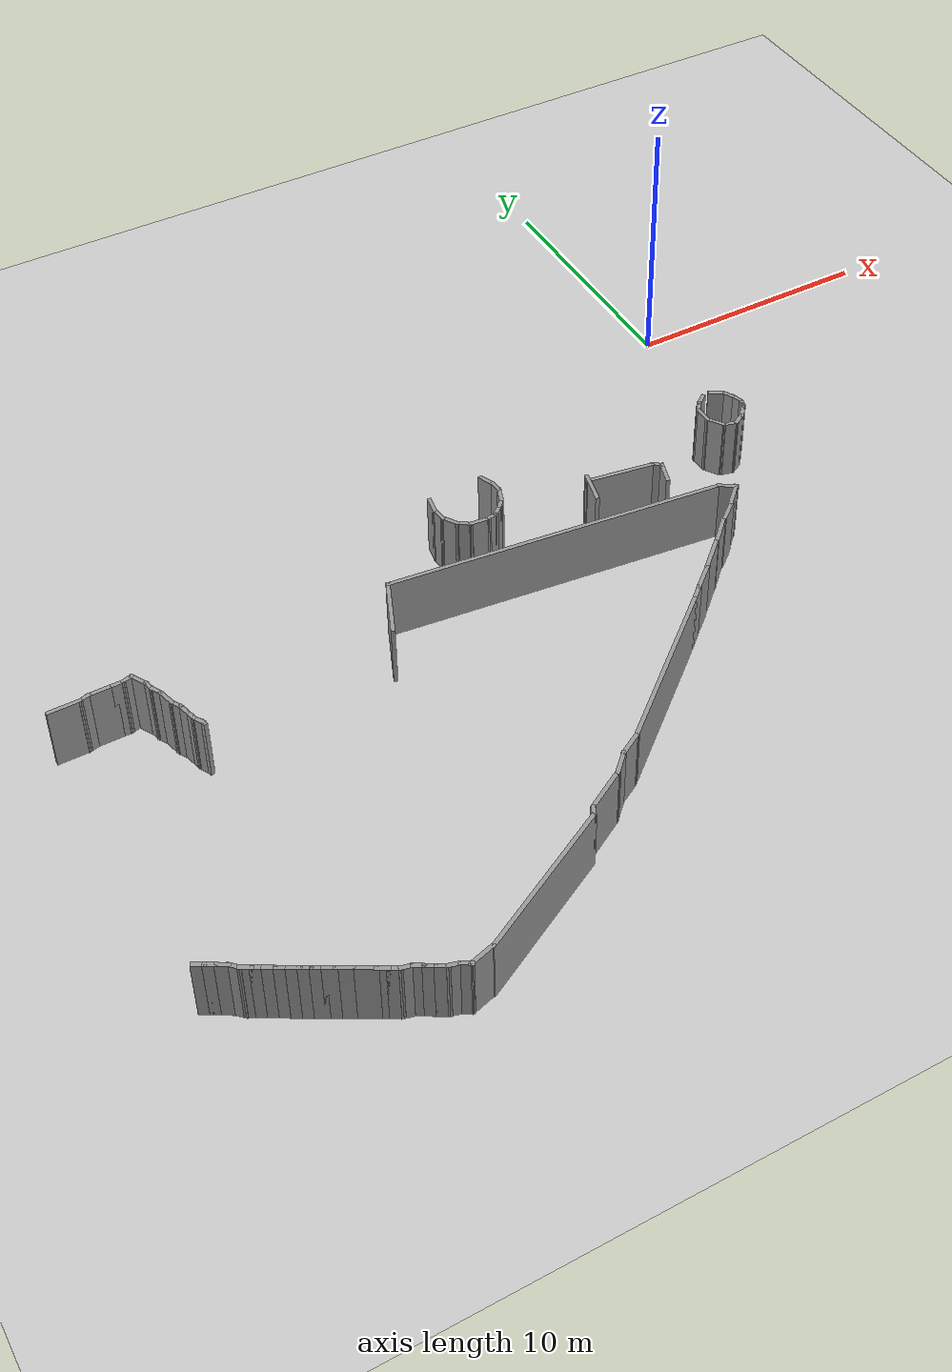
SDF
<sdf version="1.6">
 <world name="default">
  <model name="ground_plane">
   <static>1</static>
   <link name="link">
    <collision name="collision">
     <geometry><plane><normal>0 0 1</normal><size>100 100</size></plane></geometry>
     <surface><friction><ode><mu>100</mu><mu2>50</mu2></ode></friction></surface>
    </collision>
    <visual name="visual">
     <cast_shadows>0</cast_shadows>
     <geometry><plane><normal>0 0 1</normal><size>100 100</size></plane></geometry>
     <material>
      <script><uri>file://media/materials/scripts/gazebo.material</uri><name>Gazebo/Grey</name></script>
     </material>
    </visual>
   </link>
  </model>
  <model name="scene">
   <pose>1.8013 -1.70593 0 0 -0 0</pose>
   <link name="Wall_1000">
    <collision name="Wall_1000_Collision">
     <geometry><box><size>0.594006 0.15 2.5</size></box></geometry>
     <pose>0 0 1.25 0 -0 0</pose>
    </collision>
    <visual name="Wall_1000_Visual">
     <pose>0 0 1.25 0 -0 0</pose>
     <geometry><box><size>0.594006 0.15 2.5</size></box></geometry>
     <material>
      <script><uri>file://media/materials/scripts/gazebo.material</uri><name>Gazebo/Grey</name></script>
      <ambient>1 1 1 1</ambient>
     </material>
    </visual>
    <pose>-3.85892 -5.03542 0 0 -0 0.953422</pose>
   </link>
   <link name="Wall_1001">
    <collision name="Wall_1001_Collision">
     <geometry><box><size>0.604524 0.15 2.5</size></box></geometry>
     <pose>0 0 1.25 0 -0 0</pose>
    </collision>
    <visual name="Wall_1001_Visual">
     <pose>0 0 1.25 0 -0 0</pose>
     <geometry><box><size>0.604524 0.15 2.5</size></box></geometry>
     <material>
      <script><uri>file://media/materials/scripts/gazebo.material</uri><name>Gazebo/Grey</name></script>
      <ambient>1 1 1 1</ambient>
     </material>
    </visual>
    <pose>-3.54219 -4.71395 0 0 -0 0.666228</pose>
   </link>
   <link name="Wall_1003">
    <collision name="Wall_1003_Collision">
     <geometry><box><size>0.605711 0.15 2.5</size></box></geometry>
     <pose>0 0 1.25 0 -0 0</pose>
    </collision>
    <visual name="Wall_1003_Visual">
     <pose>0 0 1.25 0 -0 0</pose>
     <geometry><box><size>0.605711 0.15 2.5</size></box></geometry>
     <material>
      <script><uri>file://media/materials/scripts/gazebo.material</uri><name>Gazebo/Grey</name></script>
      <ambient>1 1 1 1</ambient>
     </material>
    </visual>
    <pose>-2.83167 -4.65707 0 0 0 -0.577103</pose>
   </link>
   <link name="Wall_1042">
    <collision name="Wall_1042_Collision">
     <geometry><box><size>0.686861 0.15 2.5</size></box></geometry>
     <pose>0 0 1.25 0 -0 0</pose>
    </collision>
    <visual name="Wall_1042_Visual">
     <pose>0 0 1.25 0 -0 0</pose>
     <geometry><box><size>0.686861 0.15 2.5</size></box></geometry>
     <material>
      <script><uri>file://media/materials/scripts/gazebo.material</uri><name>Gazebo/Grey</name></script>
      <ambient>1 1 1 1</ambient>
     </material>
    </visual>
    <pose>-12.8718 -4.70182 0 0 0 -1.16988</pose>
   </link>
   <link name="Wall_1043">
    <collision name="Wall_1043_Collision">
     <geometry><box><size>0.546988 0.15 2.5</size></box></geometry>
     <pose>0 0 1.25 0 -0 0</pose>
    </collision>
    <visual name="Wall_1043_Visual">
     <pose>0 0 1.25 0 -0 0</pose>
     <geometry><box><size>0.546988 0.15 2.5</size></box></geometry>
     <material>
      <script><uri>file://media/materials/scripts/gazebo.material</uri><name>Gazebo/Grey</name></script>
      <ambient>1 1 1 1</ambient>
     </material>
    </visual>
    <pose>-12.7444 -5.15565 0 0 0 -1.45643</pose>
   </link>
   <link name="Wall_1044">
    <collision name="Wall_1044_Collision">
     <geometry><box><size>0.701474 0.15 2.5</size></box></geometry>
     <pose>0 0 1.25 0 -0 0</pose>
    </collision>
    <visual name="Wall_1044_Visual">
     <pose>0 0 1.25 0 -0 0</pose>
     <geometry><box><size>0.701474 0.15 2.5</size></box></geometry>
     <material>
      <script><uri>file://media/materials/scripts/gazebo.material</uri><name>Gazebo/Grey</name></script>
      <ambient>1 1 1 1</ambient>
     </material>
    </visual>
    <pose>-12.8166 -5.60224 0 0 0 -1.92224</pose>
   </link>
   <link name="Wall_1045">
    <collision name="Wall_1045_Collision">
     <geometry><box><size>0.529759 0.15 2.5</size></box></geometry>
     <pose>0 0 1.25 0 -0 0</pose>
    </collision>
    <visual name="Wall_1045_Visual">
     <pose>0 0 1.25 0 -0 0</pose>
     <geometry><box><size>0.529759 0.15 2.5</size></box></geometry>
     <material>
      <script><uri>file://media/materials/scripts/gazebo.material</uri><name>Gazebo/Grey</name></script>
      <ambient>1 1 1 1</ambient>
     </material>
    </visual>
    <pose>-13.0236 -6.00702 0 0 0 -2.26529</pose>
   </link>
   <link name="Wall_1046">
    <collision name="Wall_1046_Collision">
     <geometry><box><size>0.59053 0.15 2.5</size></box></geometry>
     <pose>0 0 1.25 0 -0 0</pose>
    </collision>
    <visual name="Wall_1046_Visual">
     <pose>0 0 1.25 0 -0 0</pose>
     <geometry><box><size>0.59053 0.15 2.5</size></box></geometry>
     <material>
      <script><uri>file://media/materials/scripts/gazebo.material</uri><name>Gazebo/Grey</name></script>
      <ambient>1 1 1 1</ambient>
     </material>
    </visual>
    <pose>-13.3053 -6.29343 0 0 0 -2.44982</pose>
   </link>
   <link name="Wall_1047">
    <collision name="Wall_1047_Collision">
     <geometry><box><size>0.492926 0.15 2.5</size></box></geometry>
     <pose>0 0 1.25 0 -0 0</pose>
    </collision>
    <visual name="Wall_1047_Visual">
     <pose>0 0 1.25 0 -0 0</pose>
     <geometry><box><size>0.492926 0.15 2.5</size></box></geometry>
     <material>
      <script><uri>file://media/materials/scripts/gazebo.material</uri><name>Gazebo/Grey</name></script>
      <ambient>1 1 1 1</ambient>
     </material>
    </visual>
    <pose>-13.6421 -6.4814 0 0 0 -2.9183</pose>
   </link>
   <link name="Wall_1048">
    <collision name="Wall_1048_Collision">
     <geometry><box><size>0.833074 0.15 2.5</size></box></geometry>
     <pose>0 0 1.25 0 -0 0</pose>
    </collision>
    <visual name="Wall_1048_Visual">
     <pose>0 0 1.25 0 -0 0</pose>
     <geometry><box><size>0.833074 0.15 2.5</size></box></geometry>
     <material>
      <script><uri>file://media/materials/scripts/gazebo.material</uri><name>Gazebo/Grey</name></script>
      <ambient>1 1 1 1</ambient>
     </material>
    </visual>
    <pose>-14.1391 -6.48056 0 0 -0 3.02773</pose>
   </link>
   <link name="Wall_1049">
    <collision name="Wall_1049_Collision">
     <geometry><box><size>0.630579 0.15 2.5</size></box></geometry>
     <pose>0 0 1.25 0 -0 0</pose>
    </collision>
    <visual name="Wall_1049_Visual">
     <pose>0 0 1.25 0 -0 0</pose>
     <geometry><box><size>0.630579 0.15 2.5</size></box></geometry>
     <material>
      <script><uri>file://media/materials/scripts/gazebo.material</uri><name>Gazebo/Grey</name></script>
      <ambient>1 1 1 1</ambient>
     </material>
    </visual>
    <pose>-14.6775 -6.31666 0 0 -0 2.54708</pose>
   </link>
   <link name="Wall_1050">
    <collision name="Wall_1050_Collision">
     <geometry><box><size>0.728776 0.15 2.5</size></box></geometry>
     <pose>0 0 1.25 0 -0 0</pose>
    </collision>
    <visual name="Wall_1050_Visual">
     <pose>0 0 1.25 0 -0 0</pose>
     <geometry><box><size>0.728776 0.15 2.5</size></box></geometry>
     <material>
      <script><uri>file://media/materials/scripts/gazebo.material</uri><name>Gazebo/Grey</name></script>
      <ambient>1 1 1 1</ambient>
     </material>
    </visual>
    <pose>-15.0388 -5.93293 0 0 -0 2.1658</pose>
   </link>
   <link name="Wall_1051">
    <collision name="Wall_1051_Collision">
     <geometry><box><size>0.665895 0.15 2.5</size></box></geometry>
     <pose>0 0 1.25 0 -0 0</pose>
    </collision>
    <visual name="Wall_1051_Visual">
     <pose>0 0 1.25 0 -0 0</pose>
     <geometry><box><size>0.665895 0.15 2.5</size></box></geometry>
     <material>
      <script><uri>file://media/materials/scripts/gazebo.material</uri><name>Gazebo/Grey</name></script>
      <ambient>1 1 1 1</ambient>
     </material>
    </visual>
    <pose>-15.2373 -5.43672 0 0 -0 1.67477</pose>
   </link>
   <link name="Wall_1052">
    <collision name="Wall_1052_Collision">
     <geometry><box><size>0.73529 0.15 2.5</size></box></geometry>
     <pose>0 0 1.25 0 -0 0</pose>
    </collision>
    <visual name="Wall_1052_Visual">
     <pose>0 0 1.25 0 -0 0</pose>
     <geometry><box><size>0.73529 0.15 2.5</size></box></geometry>
     <material>
      <script><uri>file://media/materials/scripts/gazebo.material</uri><name>Gazebo/Grey</name></script>
      <ambient>1 1 1 1</ambient>
     </material>
    </visual>
    <pose>-15.2232 -4.89188 0 0 -0 1.39796</pose>
   </link>
   <link name="Wall_166">
    <collision name="Wall_166_Collision">
     <geometry><box><size>1.25 0.15 2.5</size></box></geometry>
     <pose>0 0 1.25 0 -0 0</pose>
    </collision>
    <visual name="Wall_166_Visual">
     <pose>0 0 1.25 0 -0 0</pose>
     <geometry><box><size>1.25 0.15 2.5</size></box></geometry>
     <material>
      <script><uri>file://media/materials/scripts/gazebo.material</uri><name>Gazebo/Grey</name></script>
      <ambient>1 1 1 1</ambient>
     </material>
    </visual>
    <pose>-30.2299 -7.53794 0 0 -0 0</pose>
   </link>
   <link name="Wall_167">
    <collision name="Wall_167_Collision">
     <geometry><box><size>0.5 0.15 2.5</size></box></geometry>
     <pose>0 0 1.25 0 -0 0</pose>
    </collision>
    <visual name="Wall_167_Visual">
     <pose>0 0 1.25 0 -0 0</pose>
     <geometry><box><size>0.5 0.15 2.5</size></box></geometry>
     <material>
      <script><uri>file://media/materials/scripts/gazebo.material</uri><name>Gazebo/Grey</name></script>
      <ambient>1 1 1 1</ambient>
     </material>
    </visual>
    <pose>-29.5109 -7.49265 0 0 -0 0.261799</pose>
   </link>
   <link name="Wall_168">
    <collision name="Wall_168_Collision">
     <geometry><box><size>1 0.15 2.5</size></box></geometry>
     <pose>0 0 1.25 0 -0 0</pose>
    </collision>
    <visual name="Wall_168_Visual">
     <pose>0 0 1.25 0 -0 0</pose>
     <geometry><box><size>1 0.15 2.5</size></box></geometry>
     <material>
      <script><uri>file://media/materials/scripts/gazebo.material</uri><name>Gazebo/Grey</name></script>
      <ambient>1 1 1 1</ambient>
     </material>
    </visual>
    <pose>-28.9169 -7.44735 0 0 -0 0</pose>
   </link>
   <link name="Wall_169">
    <collision name="Wall_169_Collision">
     <geometry><box><size>0.5 0.15 2.5</size></box></geometry>
     <pose>0 0 1.25 0 -0 0</pose>
    </collision>
    <visual name="Wall_169_Visual">
     <pose>0 0 1.25 0 -0 0</pose>
     <geometry><box><size>0.5 0.15 2.5</size></box></geometry>
     <material>
      <script><uri>file://media/materials/scripts/gazebo.material</uri><name>Gazebo/Grey</name></script>
      <ambient>1 1 1 1</ambient>
     </material>
    </visual>
    <pose>-28.3169 -7.44735 0 0 -0 0</pose>
   </link>
   <link name="Wall_170">
    <collision name="Wall_170_Collision">
     <geometry><box><size>0.5 0.15 2.5</size></box></geometry>
     <pose>0 0 1.25 0 -0 0</pose>
    </collision>
    <visual name="Wall_170_Visual">
     <pose>0 0 1.25 0 -0 0</pose>
     <geometry><box><size>0.5 0.15 2.5</size></box></geometry>
     <material>
      <script><uri>file://media/materials/scripts/gazebo.material</uri><name>Gazebo/Grey</name></script>
      <ambient>1 1 1 1</ambient>
     </material>
    </visual>
    <pose>-27.9728 -7.40206 0 0 -0 0.261799</pose>
   </link>
   <link name="Wall_171">
    <collision name="Wall_171_Collision">
     <geometry><box><size>0.75 0.15 2.5</size></box></geometry>
     <pose>0 0 1.25 0 -0 0</pose>
    </collision>
    <visual name="Wall_171_Visual">
     <pose>0 0 1.25 0 -0 0</pose>
     <geometry><box><size>0.75 0.15 2.5</size></box></geometry>
     <material>
      <script><uri>file://media/materials/scripts/gazebo.material</uri><name>Gazebo/Grey</name></script>
      <ambient>1 1 1 1</ambient>
     </material>
    </visual>
    <pose>-27.6538 -7.61657 0 0 0 -1.0472</pose>
   </link>
   <link name="Wall_172">
    <collision name="Wall_172_Collision">
     <geometry><box><size>0.5 0.15 2.5</size></box></geometry>
     <pose>0 0 1.25 0 -0 0</pose>
    </collision>
    <visual name="Wall_172_Visual">
     <pose>0 0 1.25 0 -0 0</pose>
     <geometry><box><size>0.5 0.15 2.5</size></box></geometry>
     <material>
      <script><uri>file://media/materials/scripts/gazebo.material</uri><name>Gazebo/Grey</name></script>
      <ambient>1 1 1 1</ambient>
     </material>
    </visual>
    <pose>-27.4585 -8.04542 0 0 0 -1.309</pose>
   </link>
   <link name="Wall_173">
    <collision name="Wall_173_Collision">
     <geometry><box><size>0.5 0.15 2.5</size></box></geometry>
     <pose>0 0 1.25 0 -0 0</pose>
    </collision>
    <visual name="Wall_173_Visual">
     <pose>0 0 1.25 0 -0 0</pose>
     <geometry><box><size>0.5 0.15 2.5</size></box></geometry>
     <material>
      <script><uri>file://media/materials/scripts/gazebo.material</uri><name>Gazebo/Grey</name></script>
      <ambient>1 1 1 1</ambient>
     </material>
    </visual>
    <pose>-27.3257 -8.36601 0 0 0 -1.0472</pose>
   </link>
   <link name="Wall_174">
    <collision name="Wall_174_Collision">
     <geometry><box><size>0.75 0.15 2.5</size></box></geometry>
     <pose>0 0 1.25 0 -0 0</pose>
    </collision>
    <visual name="Wall_174_Visual">
     <pose>0 0 1.25 0 -0 0</pose>
     <geometry><box><size>0.75 0.15 2.5</size></box></geometry>
     <material>
      <script><uri>file://media/materials/scripts/gazebo.material</uri><name>Gazebo/Grey</name></script>
      <ambient>1 1 1 1</ambient>
     </material>
    </visual>
    <pose>-27.1606 -8.80734 0 0 0 -1.309</pose>
   </link>
   <link name="Wall_176">
    <collision name="Wall_176_Collision">
     <geometry><box><size>0.5 0.15 2.5</size></box></geometry>
     <pose>0 0 1.25 0 -0 0</pose>
    </collision>
    <visual name="Wall_176_Visual">
     <pose>0 0 1.25 0 -0 0</pose>
     <geometry><box><size>0.5 0.15 2.5</size></box></geometry>
     <material>
      <script><uri>file://media/materials/scripts/gazebo.material</uri><name>Gazebo/Grey</name></script>
      <ambient>1 1 1 1</ambient>
     </material>
    </visual>
    <pose>-26.9954 -9.24867 0 0 0 -1.0472</pose>
   </link>
   <link name="Wall_177">
    <collision name="Wall_177_Collision">
     <geometry><box><size>0.5 0.15 2.5</size></box></geometry>
     <pose>0 0 1.25 0 -0 0</pose>
    </collision>
    <visual name="Wall_177_Visual">
     <pose>0 0 1.25 0 -0 0</pose>
     <geometry><box><size>0.5 0.15 2.5</size></box></geometry>
     <material>
      <script><uri>file://media/materials/scripts/gazebo.material</uri><name>Gazebo/Grey</name></script>
      <ambient>1 1 1 1</ambient>
     </material>
    </visual>
    <pose>-26.8626 -9.56926 0 0 0 -1.309</pose>
   </link>
   <link name="Wall_178">
    <collision name="Wall_178_Collision">
     <geometry><box><size>0.5 0.15 2.5</size></box></geometry>
     <pose>0 0 1.25 0 -0 0</pose>
    </collision>
    <visual name="Wall_178_Visual">
     <pose>0 0 1.25 0 -0 0</pose>
     <geometry><box><size>0.5 0.15 2.5</size></box></geometry>
     <material>
      <script><uri>file://media/materials/scripts/gazebo.material</uri><name>Gazebo/Grey</name></script>
      <ambient>1 1 1 1</ambient>
     </material>
    </visual>
    <pose>-26.772 -9.90734 0 0 0 -1.309</pose>
   </link>
   <link name="Wall_179">
    <collision name="Wall_179_Collision">
     <geometry><box><size>0.5 0.15 2.5</size></box></geometry>
     <pose>0 0 1.25 0 -0 0</pose>
    </collision>
    <visual name="Wall_179_Visual">
     <pose>0 0 1.25 0 -0 0</pose>
     <geometry><box><size>0.5 0.15 2.5</size></box></geometry>
     <material>
      <script><uri>file://media/materials/scripts/gazebo.material</uri><name>Gazebo/Grey</name></script>
      <ambient>1 1 1 1</ambient>
     </material>
    </visual>
    <pose>-26.6392 -10.2279 0 0 0 -1.0472</pose>
   </link>
   <link name="Wall_180">
    <collision name="Wall_180_Collision">
     <geometry><box><size>0.25 0.15 2.5</size></box></geometry>
     <pose>0 0 1.25 0 -0 0</pose>
    </collision>
    <visual name="Wall_180_Visual">
     <pose>0 0 1.25 0 -0 0</pose>
     <geometry><box><size>0.25 0.15 2.5</size></box></geometry>
     <material>
      <script><uri>file://media/materials/scripts/gazebo.material</uri><name>Gazebo/Grey</name></script>
      <ambient>1 1 1 1</ambient>
     </material>
    </visual>
    <pose>-26.5388 -10.4278 0 0 0 -1.309</pose>
   </link>
   <link name="Wall_28">
    <collision name="Wall_28_Collision">
     <geometry><box><size>2.37703 0.15 2.5</size></box></geometry>
     <pose>0 0 1.25 0 -0 0</pose>
    </collision>
    <visual name="Wall_28_Visual">
     <pose>0 0 1.25 0 -0 0</pose>
     <geometry><box><size>2.37703 0.15 2.5</size></box></geometry>
     <material>
      <script><uri>file://media/materials/scripts/gazebo.material</uri><name>Gazebo/Grey</name></script>
      <ambient>1 1 1 1</ambient>
     </material>
    </visual>
    <pose>-18.873 -8.72922 0 0 -0 1.17555</pose>
   </link>
   <link name="Wall_52">
    <collision name="Wall_52_Collision">
     <geometry><box><size>13.0137 0.15 2.5</size></box></geometry>
     <pose>0 0 1.25 0 -0 0</pose>
    </collision>
    <visual name="Wall_52_Visual">
     <pose>0 0 1.25 0 -0 0</pose>
     <geometry><box><size>13.0137 0.15 2.5</size></box></geometry>
     <material>
      <script><uri>file://media/materials/scripts/gazebo.material</uri><name>Gazebo/Grey</name></script>
      <ambient>1 1 1 1</ambient>
     </material>
    </visual>
    <pose>-12.0351 -8.41986 0 0 0 -0.109673</pose>
   </link>
   <link name="Wall_53">
    <collision name="Wall_53_Collision">
     <geometry><box><size>0.792382 0.15 2.5</size></box></geometry>
     <pose>0 0 1.25 0 -0 0</pose>
    </collision>
    <visual name="Wall_53_Visual">
     <pose>0 0 1.25 0 -0 0</pose>
     <geometry><box><size>0.792382 0.15 2.5</size></box></geometry>
     <material>
      <script><uri>file://media/materials/scripts/gazebo.material</uri><name>Gazebo/Grey</name></script>
      <ambient>1 1 1 1</ambient>
     </material>
    </visual>
    <pose>-5.38964 -9.29569 0 0 0 -0.564495</pose>
   </link>
   <link name="Wall_54">
    <collision name="Wall_54_Collision">
     <geometry><box><size>1.09557 0.15 2.5</size></box></geometry>
     <pose>0 0 1.25 0 -0 0</pose>
    </collision>
    <visual name="Wall_54_Visual">
     <pose>0 0 1.25 0 -0 0</pose>
     <geometry><box><size>1.09557 0.15 2.5</size></box></geometry>
     <material>
      <script><uri>file://media/materials/scripts/gazebo.material</uri><name>Gazebo/Grey</name></script>
      <ambient>1 1 1 1</ambient>
     </material>
    </visual>
    <pose>-5.45519 -9.78011 0 0 0 -2.36402</pose>
   </link>
   <link name="Wall_55">
    <collision name="Wall_55_Collision">
     <geometry><box><size>0.986064 0.15 2.5</size></box></geometry>
     <pose>0 0 1.25 0 -0 0</pose>
    </collision>
    <visual name="Wall_55_Visual">
     <pose>0 0 1.25 0 -0 0</pose>
     <geometry><box><size>0.986064 0.15 2.5</size></box></geometry>
     <material>
      <script><uri>file://media/materials/scripts/gazebo.material</uri><name>Gazebo/Grey</name></script>
      <ambient>1 1 1 1</ambient>
     </material>
    </visual>
    <pose>-6.09443 -10.3982 0 0 0 -2.44785</pose>
   </link>
   <link name="Wall_61">
    <collision name="Wall_61_Collision">
     <geometry><box><size>1.25 0.15 2.5</size></box></geometry>
     <pose>0 0 1.25 0 -0 0</pose>
    </collision>
    <visual name="Wall_61_Visual">
     <pose>0 0 1.25 0 -0 0</pose>
     <geometry><box><size>1.25 0.15 2.5</size></box></geometry>
     <material>
      <script><uri>file://media/materials/scripts/gazebo.material</uri><name>Gazebo/Grey</name></script>
      <ambient>1 1 1 1</ambient>
     </material>
    </visual>
    <pose>-6.87672 -11.07 0 0 0 -2.35619</pose>
   </link>
   <link name="Wall_62">
    <collision name="Wall_62_Collision">
     <geometry><box><size>1.63231 0.15 2.5</size></box></geometry>
     <pose>0 0 1.25 0 -0 0</pose>
    </collision>
    <visual name="Wall_62_Visual">
     <pose>0 0 1.25 0 -0 0</pose>
     <geometry><box><size>1.63231 0.15 2.5</size></box></geometry>
     <material>
      <script><uri>file://media/materials/scripts/gazebo.material</uri><name>Gazebo/Grey</name></script>
      <ambient>1 1 1 1</ambient>
     </material>
    </visual>
    <pose>-7.82966 -11.9613 0 0 0 -2.39683</pose>
   </link>
   <link name="Wall_64">
    <collision name="Wall_64_Collision">
     <geometry><box><size>1.21811 0.15 2.5</size></box></geometry>
     <pose>0 0 1.25 0 -0 0</pose>
    </collision>
    <visual name="Wall_64_Visual">
     <pose>0 0 1.25 0 -0 0</pose>
     <geometry><box><size>1.21811 0.15 2.5</size></box></geometry>
     <material>
      <script><uri>file://media/materials/scripts/gazebo.material</uri><name>Gazebo/Grey</name></script>
      <ambient>1 1 1 1</ambient>
     </material>
    </visual>
    <pose>-8.76039 -12.8119 0 0 0 -2.43126</pose>
   </link>
   <link name="Wall_65">
    <collision name="Wall_65_Collision">
     <geometry><box><size>0.754214 0.15 2.5</size></box></geometry>
     <pose>0 0 1.25 0 -0 0</pose>
    </collision>
    <visual name="Wall_65_Visual">
     <pose>0 0 1.25 0 -0 0</pose>
     <geometry><box><size>0.754214 0.15 2.5</size></box></geometry>
     <material>
      <script><uri>file://media/materials/scripts/gazebo.material</uri><name>Gazebo/Grey</name></script>
      <ambient>1 1 1 1</ambient>
     </material>
    </visual>
    <pose>-9.3739 -13.3601 0 0 0 -2.41814</pose>
   </link>
   <link name="Wall_66">
    <collision name="Wall_66_Collision">
     <geometry><box><size>6.74098 0.15 2.5</size></box></geometry>
     <pose>0 0 1.25 0 -0 0</pose>
    </collision>
    <visual name="Wall_66_Visual">
     <pose>0 0 1.25 0 -0 0</pose>
     <geometry><box><size>6.74098 0.15 2.5</size></box></geometry>
     <material>
      <script><uri>file://media/materials/scripts/gazebo.material</uri><name>Gazebo/Grey</name></script>
      <ambient>1 1 1 1</ambient>
     </material>
    </visual>
    <pose>-12.1086 -15.6975 0 0 0 -2.43585</pose>
   </link>
   <link name="Wall_70">
    <collision name="Wall_70_Collision">
     <geometry><box><size>1 0.15 2.5</size></box></geometry>
     <pose>0 0 1.25 0 -0 0</pose>
    </collision>
    <visual name="Wall_70_Visual">
     <pose>0 0 1.25 0 -0 0</pose>
     <geometry><box><size>1 0.15 2.5</size></box></geometry>
     <material>
      <script><uri>file://media/materials/scripts/gazebo.material</uri><name>Gazebo/Grey</name></script>
      <ambient>1 1 1 1</ambient>
     </material>
    </visual>
    <pose>-14.985 -18.0475 0 0 0 -2.61799</pose>
   </link>
   <link name="Wall_71">
    <collision name="Wall_71_Collision">
     <geometry><box><size>1 0.15 2.5</size></box></geometry>
     <pose>0 0 1.25 0 -0 0</pose>
    </collision>
    <visual name="Wall_71_Visual">
     <pose>0 0 1.25 0 -0 0</pose>
     <geometry><box><size>1 0.15 2.5</size></box></geometry>
     <material>
      <script><uri>file://media/materials/scripts/gazebo.material</uri><name>Gazebo/Grey</name></script>
      <ambient>1 1 1 1</ambient>
     </material>
    </visual>
    <pose>-15.6536 -18.5605 0 0 0 -2.35619</pose>
   </link>
   <link name="Wall_72">
    <collision name="Wall_72_Collision">
     <geometry><box><size>1.75 0.15 2.5</size></box></geometry>
     <pose>0 0 1.25 0 -0 0</pose>
    </collision>
    <visual name="Wall_72_Visual">
     <pose>0 0 1.25 0 -0 0</pose>
     <geometry><box><size>1.75 0.15 2.5</size></box></geometry>
     <material>
      <script><uri>file://media/materials/scripts/gazebo.material</uri><name>Gazebo/Grey</name></script>
      <ambient>1 1 1 1</ambient>
     </material>
    </visual>
    <pose>-16.6469 -19.261 0 0 0 -2.61799</pose>
   </link>
   <link name="Wall_73">
    <collision name="Wall_73_Collision">
     <geometry><box><size>0.482416 0.15 2.5</size></box></geometry>
     <pose>0 0 1.25 0 -0 0</pose>
    </collision>
    <visual name="Wall_73_Visual">
     <pose>0 0 1.25 0 -0 0</pose>
     <geometry><box><size>0.482416 0.15 2.5</size></box></geometry>
     <material>
      <script><uri>file://media/materials/scripts/gazebo.material</uri><name>Gazebo/Grey</name></script>
      <ambient>1 1 1 1</ambient>
     </material>
    </visual>
    <pose>-17.4272 -19.8023 0 0 0 -2.12521</pose>
   </link>
   <link name="Wall_74">
    <collision name="Wall_74_Collision">
     <geometry><box><size>5.93803 0.15 2.5</size></box></geometry>
     <pose>0 0 1.25 0 -0 0</pose>
    </collision>
    <visual name="Wall_74_Visual">
     <pose>0 0 1.25 0 -0 0</pose>
     <geometry><box><size>5.93803 0.15 2.5</size></box></geometry>
     <material>
      <script><uri>file://media/materials/scripts/gazebo.material</uri><name>Gazebo/Grey</name></script>
      <ambient>1 1 1 1</ambient>
     </material>
    </visual>
    <pose>-20.0627 -21.3364 0 0 0 -2.64758</pose>
   </link>
   <link name="Wall_75">
    <collision name="Wall_75_Collision">
     <geometry><box><size>1.02521 0.15 2.5</size></box></geometry>
     <pose>0 0 1.25 0 -0 0</pose>
    </collision>
    <visual name="Wall_75_Visual">
     <pose>0 0 1.25 0 -0 0</pose>
     <geometry><box><size>1.02521 0.15 2.5</size></box></geometry>
     <material>
      <script><uri>file://media/materials/scripts/gazebo.material</uri><name>Gazebo/Grey</name></script>
      <ambient>1 1 1 1</ambient>
     </material>
    </visual>
    <pose>-23.0315 -22.8083 0 0 0 -2.86324</pose>
   </link>
   <link name="Wall_77">
    <collision name="Wall_77_Collision">
     <geometry><box><size>0.5 0.15 2.5</size></box></geometry>
     <pose>0 0 1.25 0 -0 0</pose>
    </collision>
    <visual name="Wall_77_Visual">
     <pose>0 0 1.25 0 -0 0</pose>
     <geometry><box><size>0.5 0.15 2.5</size></box></geometry>
     <material>
      <script><uri>file://media/materials/scripts/gazebo.material</uri><name>Gazebo/Grey</name></script>
      <ambient>1 1 1 1</ambient>
     </material>
    </visual>
    <pose>-23.6038 -22.8411 0 0 -0 2.61799</pose>
   </link>
   <link name="Wall_78">
    <collision name="Wall_78_Collision">
     <geometry><box><size>0.5 0.15 2.5</size></box></geometry>
     <pose>0 0 1.25 0 -0 0</pose>
    </collision>
    <visual name="Wall_78_Visual">
     <pose>0 0 1.25 0 -0 0</pose>
     <geometry><box><size>0.5 0.15 2.5</size></box></geometry>
     <material>
      <script><uri>file://media/materials/scripts/gazebo.material</uri><name>Gazebo/Grey</name></script>
      <ambient>1 1 1 1</ambient>
     </material>
    </visual>
    <pose>-23.9244 -22.7083 0 0 -0 2.87979</pose>
   </link>
   <link name="Wall_79">
    <collision name="Wall_79_Collision">
     <geometry><box><size>0.5 0.15 2.5</size></box></geometry>
     <pose>0 0 1.25 0 -0 0</pose>
    </collision>
    <visual name="Wall_79_Visual">
     <pose>0 0 1.25 0 -0 0</pose>
     <geometry><box><size>0.5 0.15 2.5</size></box></geometry>
     <material>
      <script><uri>file://media/materials/scripts/gazebo.material</uri><name>Gazebo/Grey</name></script>
      <ambient>1 1 1 1</ambient>
     </material>
    </visual>
    <pose>-24.245 -22.5755 0 0 -0 2.61799</pose>
   </link>
   <link name="Wall_80">
    <collision name="Wall_80_Collision">
     <geometry><box><size>0.5 0.15 2.5</size></box></geometry>
     <pose>0 0 1.25 0 -0 0</pose>
    </collision>
    <visual name="Wall_80_Visual">
     <pose>0 0 1.25 0 -0 0</pose>
     <geometry><box><size>0.5 0.15 2.5</size></box></geometry>
     <material>
      <script><uri>file://media/materials/scripts/gazebo.material</uri><name>Gazebo/Grey</name></script>
      <ambient>1 1 1 1</ambient>
     </material>
    </visual>
    <pose>-24.5481 -22.4005 0 0 -0 2.61799</pose>
   </link>
   <link name="Wall_81">
    <collision name="Wall_81_Collision">
     <geometry><box><size>0.5 0.15 2.5</size></box></geometry>
     <pose>0 0 1.25 0 -0 0</pose>
    </collision>
    <visual name="Wall_81_Visual">
     <pose>0 0 1.25 0 -0 0</pose>
     <geometry><box><size>0.5 0.15 2.5</size></box></geometry>
     <material>
      <script><uri>file://media/materials/scripts/gazebo.material</uri><name>Gazebo/Grey</name></script>
      <ambient>1 1 1 1</ambient>
     </material>
    </visual>
    <pose>-24.8512 -22.2255 0 0 -0 2.61799</pose>
   </link>
   <link name="Wall_82">
    <collision name="Wall_82_Collision">
     <geometry><box><size>0.5 0.15 2.5</size></box></geometry>
     <pose>0 0 1.25 0 -0 0</pose>
    </collision>
    <visual name="Wall_82_Visual">
     <pose>0 0 1.25 0 -0 0</pose>
     <geometry><box><size>0.5 0.15 2.5</size></box></geometry>
     <material>
      <script><uri>file://media/materials/scripts/gazebo.material</uri><name>Gazebo/Grey</name></script>
      <ambient>1 1 1 1</ambient>
     </material>
    </visual>
    <pose>-25.1718 -22.0927 0 0 -0 2.87979</pose>
   </link>
   <link name="Wall_83">
    <collision name="Wall_83_Collision">
     <geometry><box><size>0.5 0.15 2.5</size></box></geometry>
     <pose>0 0 1.25 0 -0 0</pose>
    </collision>
    <visual name="Wall_83_Visual">
     <pose>0 0 1.25 0 -0 0</pose>
     <geometry><box><size>0.5 0.15 2.5</size></box></geometry>
     <material>
      <script><uri>file://media/materials/scripts/gazebo.material</uri><name>Gazebo/Grey</name></script>
      <ambient>1 1 1 1</ambient>
     </material>
    </visual>
    <pose>-25.4924 -21.9599 0 0 -0 2.61799</pose>
   </link>
   <link name="Wall_84">
    <collision name="Wall_84_Collision">
     <geometry><box><size>0.5 0.15 2.5</size></box></geometry>
     <pose>0 0 1.25 0 -0 0</pose>
    </collision>
    <visual name="Wall_84_Visual">
     <pose>0 0 1.25 0 -0 0</pose>
     <geometry><box><size>0.5 0.15 2.5</size></box></geometry>
     <material>
      <script><uri>file://media/materials/scripts/gazebo.material</uri><name>Gazebo/Grey</name></script>
      <ambient>1 1 1 1</ambient>
     </material>
    </visual>
    <pose>-25.7955 -21.7849 0 0 -0 2.61799</pose>
   </link>
   <link name="Wall_85">
    <collision name="Wall_85_Collision">
     <geometry><box><size>0.75 0.15 2.5</size></box></geometry>
     <pose>0 0 1.25 0 -0 0</pose>
    </collision>
    <visual name="Wall_85_Visual">
     <pose>0 0 1.25 0 -0 0</pose>
     <geometry><box><size>0.75 0.15 2.5</size></box></geometry>
     <material>
      <script><uri>file://media/materials/scripts/gazebo.material</uri><name>Gazebo/Grey</name></script>
      <ambient>1 1 1 1</ambient>
     </material>
    </visual>
    <pose>-26.2069 -21.5474 0 0 -0 2.61799</pose>
   </link>
   <link name="Wall_86">
    <collision name="Wall_86_Collision">
     <geometry><box><size>0.75 0.15 2.5</size></box></geometry>
     <pose>0 0 1.25 0 -0 0</pose>
    </collision>
    <visual name="Wall_86_Visual">
     <pose>0 0 1.25 0 -0 0</pose>
     <geometry><box><size>0.75 0.15 2.5</size></box></geometry>
     <material>
      <script><uri>file://media/materials/scripts/gazebo.material</uri><name>Gazebo/Grey</name></script>
      <ambient>1 1 1 1</ambient>
     </material>
    </visual>
    <pose>-26.7265 -21.2474 0 0 -0 2.61799</pose>
   </link>
   <link name="Wall_87">
    <collision name="Wall_87_Collision">
     <geometry><box><size>0.5 0.15 2.5</size></box></geometry>
     <pose>0 0 1.25 0 -0 0</pose>
    </collision>
    <visual name="Wall_87_Visual">
     <pose>0 0 1.25 0 -0 0</pose>
     <geometry><box><size>0.5 0.15 2.5</size></box></geometry>
     <material>
      <script><uri>file://media/materials/scripts/gazebo.material</uri><name>Gazebo/Grey</name></script>
      <ambient>1 1 1 1</ambient>
     </material>
    </visual>
    <pose>-27.1379 -21.0099 0 0 -0 2.61799</pose>
   </link>
   <link name="Wall_89">
    <collision name="Wall_89_Collision">
     <geometry><box><size>0.5 0.15 2.5</size></box></geometry>
     <pose>0 0 1.25 0 -0 0</pose>
    </collision>
    <visual name="Wall_89_Visual">
     <pose>0 0 1.25 0 -0 0</pose>
     <geometry><box><size>0.5 0.15 2.5</size></box></geometry>
     <material>
      <script><uri>file://media/materials/scripts/gazebo.material</uri><name>Gazebo/Grey</name></script>
      <ambient>1 1 1 1</ambient>
     </material>
    </visual>
    <pose>-27.441 -20.8349 0 0 -0 2.61799</pose>
   </link>
   <link name="Wall_90">
    <collision name="Wall_90_Collision">
     <geometry><box><size>0.5 0.15 2.5</size></box></geometry>
     <pose>0 0 1.25 0 -0 0</pose>
    </collision>
    <visual name="Wall_90_Visual">
     <pose>0 0 1.25 0 -0 0</pose>
     <geometry><box><size>0.5 0.15 2.5</size></box></geometry>
     <material>
      <script><uri>file://media/materials/scripts/gazebo.material</uri><name>Gazebo/Grey</name></script>
      <ambient>1 1 1 1</ambient>
     </material>
    </visual>
    <pose>-27.7441 -20.6599 0 0 -0 2.61799</pose>
   </link>
   <link name="Wall_91">
    <collision name="Wall_91_Collision">
     <geometry><box><size>0.5 0.15 2.5</size></box></geometry>
     <pose>0 0 1.25 0 -0 0</pose>
    </collision>
    <visual name="Wall_91_Visual">
     <pose>0 0 1.25 0 -0 0</pose>
     <geometry><box><size>0.5 0.15 2.5</size></box></geometry>
     <material>
      <script><uri>file://media/materials/scripts/gazebo.material</uri><name>Gazebo/Grey</name></script>
      <ambient>1 1 1 1</ambient>
     </material>
    </visual>
    <pose>-28.0472 -20.4849 0 0 -0 2.61799</pose>
   </link>
   <link name="Wall_92">
    <collision name="Wall_92_Collision">
     <geometry><box><size>0.5 0.15 2.5</size></box></geometry>
     <pose>0 0 1.25 0 -0 0</pose>
    </collision>
    <visual name="Wall_92_Visual">
     <pose>0 0 1.25 0 -0 0</pose>
     <geometry><box><size>0.5 0.15 2.5</size></box></geometry>
     <material>
      <script><uri>file://media/materials/scripts/gazebo.material</uri><name>Gazebo/Grey</name></script>
      <ambient>1 1 1 1</ambient>
     </material>
    </visual>
    <pose>-28.3503 -20.3099 0 0 -0 2.61799</pose>
   </link>
   <link name="Wall_93">
    <collision name="Wall_93_Collision">
     <geometry><box><size>0.5 0.15 2.5</size></box></geometry>
     <pose>0 0 1.25 0 -0 0</pose>
    </collision>
    <visual name="Wall_93_Visual">
     <pose>0 0 1.25 0 -0 0</pose>
     <geometry><box><size>0.5 0.15 2.5</size></box></geometry>
     <material>
      <script><uri>file://media/materials/scripts/gazebo.material</uri><name>Gazebo/Grey</name></script>
      <ambient>1 1 1 1</ambient>
     </material>
    </visual>
    <pose>-28.6534 -20.1349 0 0 -0 2.61799</pose>
   </link>
   <link name="Wall_94">
    <collision name="Wall_94_Collision">
     <geometry><box><size>0.5 0.15 2.5</size></box></geometry>
     <pose>0 0 1.25 0 -0 0</pose>
    </collision>
    <visual name="Wall_94_Visual">
     <pose>0 0 1.25 0 -0 0</pose>
     <geometry><box><size>0.5 0.15 2.5</size></box></geometry>
     <material>
      <script><uri>file://media/materials/scripts/gazebo.material</uri><name>Gazebo/Grey</name></script>
      <ambient>1 1 1 1</ambient>
     </material>
    </visual>
    <pose>-28.9565 -19.9599 0 0 -0 2.61799</pose>
   </link>
   <link name="Wall_946">
    <collision name="Wall_946_Collision">
     <geometry><box><size>1.31945 0.15 2.5</size></box></geometry>
     <pose>0 0 1.25 0 -0 0</pose>
    </collision>
    <visual name="Wall_946_Visual">
     <pose>0 0 1.25 0 -0 0</pose>
     <geometry><box><size>1.31945 0.15 2.5</size></box></geometry>
     <material>
      <script><uri>file://media/materials/scripts/gazebo.material</uri><name>Gazebo/Grey</name></script>
      <ambient>1 1 1 1</ambient>
     </material>
    </visual>
    <pose>-9.70977 -6.89953 0 0 -0 1.34167</pose>
   </link>
   <link name="Wall_95">
    <collision name="Wall_95_Collision">
     <geometry><box><size>0.5 0.15 2.5</size></box></geometry>
     <pose>0 0 1.25 0 -0 0</pose>
    </collision>
    <visual name="Wall_95_Visual">
     <pose>0 0 1.25 0 -0 0</pose>
     <geometry><box><size>0.5 0.15 2.5</size></box></geometry>
     <material>
      <script><uri>file://media/materials/scripts/gazebo.material</uri><name>Gazebo/Grey</name></script>
      <ambient>1 1 1 1</ambient>
     </material>
    </visual>
    <pose>-29.2596 -19.7849 0 0 -0 2.61799</pose>
   </link>
   <link name="Wall_950">
    <collision name="Wall_950_Collision">
     <geometry><box><size>2.70195 0.15 2.5</size></box></geometry>
     <pose>0 0 1.25 0 -0 0</pose>
    </collision>
    <visual name="Wall_950_Visual">
     <pose>0 0 1.25 0 -0 0</pose>
     <geometry><box><size>2.70195 0.15 2.5</size></box></geometry>
     <material>
      <script><uri>file://media/materials/scripts/gazebo.material</uri><name>Gazebo/Grey</name></script>
      <ambient>1 1 1 1</ambient>
     </material>
    </visual>
    <pose>-8.40746 -6.74365 0 0 0 -0.157752</pose>
   </link>
   <link name="Wall_951">
    <collision name="Wall_951_Collision">
     <geometry><box><size>0.464938 0.15 2.5</size></box></geometry>
     <pose>0 0 1.25 0 -0 0</pose>
    </collision>
    <visual name="Wall_951_Visual">
     <pose>0 0 1.25 0 -0 0</pose>
     <geometry><box><size>0.464938 0.15 2.5</size></box></geometry>
     <material>
      <script><uri>file://media/materials/scripts/gazebo.material</uri><name>Gazebo/Grey</name></script>
      <ambient>1 1 1 1</ambient>
     </material>
    </visual>
    <pose>-6.99985 -7.03529 0 0 0 -0.617556</pose>
   </link>
   <link name="Wall_952">
    <collision name="Wall_952_Collision">
     <geometry><box><size>0.982479 0.15 2.5</size></box></geometry>
     <pose>0 0 1.25 0 -0 0</pose>
    </collision>
    <visual name="Wall_952_Visual">
     <pose>0 0 1.25 0 -0 0</pose>
     <geometry><box><size>0.982479 0.15 2.5</size></box></geometry>
     <material>
      <script><uri>file://media/materials/scripts/gazebo.material</uri><name>Gazebo/Grey</name></script>
      <ambient>1 1 1 1</ambient>
     </material>
    </visual>
    <pose>-6.97723 -7.52354 0 0 0 -1.87544</pose>
   </link>
   <link name="Wall_96">
    <collision name="Wall_96_Collision">
     <geometry><box><size>0.5 0.15 2.5</size></box></geometry>
     <pose>0 0 1.25 0 -0 0</pose>
    </collision>
    <visual name="Wall_96_Visual">
     <pose>0 0 1.25 0 -0 0</pose>
     <geometry><box><size>0.5 0.15 2.5</size></box></geometry>
     <material>
      <script><uri>file://media/materials/scripts/gazebo.material</uri><name>Gazebo/Grey</name></script>
      <ambient>1 1 1 1</ambient>
     </material>
    </visual>
    <pose>-29.5349 -19.5737 0 0 -0 2.35619</pose>
   </link>
   <link name="Wall_97">
    <collision name="Wall_97_Collision">
     <geometry><box><size>0.5 0.15 2.5</size></box></geometry>
     <pose>0 0 1.25 0 -0 0</pose>
    </collision>
    <visual name="Wall_97_Visual">
     <pose>0 0 1.25 0 -0 0</pose>
     <geometry><box><size>0.5 0.15 2.5</size></box></geometry>
     <material>
      <script><uri>file://media/materials/scripts/gazebo.material</uri><name>Gazebo/Grey</name></script>
      <ambient>1 1 1 1</ambient>
     </material>
    </visual>
    <pose>-29.8102 -19.3624 0 0 -0 2.61799</pose>
   </link>
   <link name="Wall_98">
    <collision name="Wall_98_Collision">
     <geometry><box><size>0.5 0.15 2.5</size></box></geometry>
     <pose>0 0 1.25 0 -0 0</pose>
    </collision>
    <visual name="Wall_98_Visual">
     <pose>0 0 1.25 0 -0 0</pose>
     <geometry><box><size>0.5 0.15 2.5</size></box></geometry>
     <material>
      <script><uri>file://media/materials/scripts/gazebo.material</uri><name>Gazebo/Grey</name></script>
      <ambient>1 1 1 1</ambient>
     </material>
    </visual>
    <pose>-30.1133 -19.1874 0 0 -0 2.61799</pose>
   </link>
   <link name="Wall_989">
    <collision name="Wall_989_Collision">
     <geometry><box><size>0.497794 0.15 2.5</size></box></geometry>
     <pose>0 0 1.25 0 -0 0</pose>
    </collision>
    <visual name="Wall_989_Visual">
     <pose>0 0 1.25 0 -0 0</pose>
     <geometry><box><size>0.497794 0.15 2.5</size></box></geometry>
     <material>
      <script><uri>file://media/materials/scripts/gazebo.material</uri><name>Gazebo/Grey</name></script>
      <ambient>1 1 1 1</ambient>
     </material>
    </visual>
    <pose>-2.47455 -4.98916 0 0 0 -1.07238</pose>
   </link>
   <link name="Wall_99">
    <collision name="Wall_99_Collision">
     <geometry><box><size>0.5 0.15 2.5</size></box></geometry>
     <pose>0 0 1.25 0 -0 0</pose>
    </collision>
    <visual name="Wall_99_Visual">
     <pose>0 0 1.25 0 -0 0</pose>
     <geometry><box><size>0.5 0.15 2.5</size></box></geometry>
     <material>
      <script><uri>file://media/materials/scripts/gazebo.material</uri><name>Gazebo/Grey</name></script>
      <ambient>1 1 1 1</ambient>
     </material>
    </visual>
    <pose>-30.4164 -19.0124 0 0 -0 2.61799</pose>
   </link>
   <link name="Wall_990">
    <collision name="Wall_990_Collision">
     <geometry><box><size>0.478639 0.15 2.5</size></box></geometry>
     <pose>0 0 1.25 0 -0 0</pose>
    </collision>
    <visual name="Wall_990_Visual">
     <pose>0 0 1.25 0 -0 0</pose>
     <geometry><box><size>0.478639 0.15 2.5</size></box></geometry>
     <material>
      <script><uri>file://media/materials/scripts/gazebo.material</uri><name>Gazebo/Grey</name></script>
      <ambient>1 1 1 1</ambient>
     </material>
    </visual>
    <pose>-2.33065 -5.29802 0 0 0 -1.25374</pose>
   </link>
   <link name="Wall_993">
    <collision name="Wall_993_Collision">
     <geometry><box><size>0.304243 0.15 2.5</size></box></geometry>
     <pose>0 0 1.25 0 -0 0</pose>
    </collision>
    <visual name="Wall_993_Visual">
     <pose>0 0 1.25 0 -0 0</pose>
     <geometry><box><size>0.304243 0.15 2.5</size></box></geometry>
     <material>
      <script><uri>file://media/materials/scripts/gazebo.material</uri><name>Gazebo/Grey</name></script>
      <ambient>1 1 1 1</ambient>
     </material>
    </visual>
    <pose>-2.29954 -5.66896 0 0 0 -1.80968</pose>
   </link>
   <link name="Wall_994">
    <collision name="Wall_994_Collision">
     <geometry><box><size>0.372266 0.15 2.5</size></box></geometry>
     <pose>0 0 1.25 0 -0 0</pose>
    </collision>
    <visual name="Wall_994_Visual">
     <pose>0 0 1.25 0 -0 0</pose>
     <geometry><box><size>0.372266 0.15 2.5</size></box></geometry>
     <material>
      <script><uri>file://media/materials/scripts/gazebo.material</uri><name>Gazebo/Grey</name></script>
      <ambient>1 1 1 1</ambient>
     </material>
    </visual>
    <pose>-2.39469 -5.83229 0 0 0 -2.22188</pose>
   </link>
   <link name="Wall_995">
    <collision name="Wall_995_Collision">
     <geometry><box><size>0.609892 0.15 2.5</size></box></geometry>
     <pose>0 0 1.25 0 -0 0</pose>
    </collision>
    <visual name="Wall_995_Visual">
     <pose>0 0 1.25 0 -0 0</pose>
     <geometry><box><size>0.609892 0.15 2.5</size></box></geometry>
     <material>
      <script><uri>file://media/materials/scripts/gazebo.material</uri><name>Gazebo/Grey</name></script>
      <ambient>1 1 1 1</ambient>
     </material>
    </visual>
    <pose>-2.59975 -6.10684 0 0 0 -2.26582</pose>
   </link>
   <link name="Wall_996">
    <collision name="Wall_996_Collision">
     <geometry><box><size>0.579934 0.15 2.5</size></box></geometry>
     <pose>0 0 1.25 0 -0 0</pose>
    </collision>
    <visual name="Wall_996_Visual">
     <pose>0 0 1.25 0 -0 0</pose>
     <geometry><box><size>0.579934 0.15 2.5</size></box></geometry>
     <material>
      <script><uri>file://media/materials/scripts/gazebo.material</uri><name>Gazebo/Grey</name></script>
      <ambient>1 1 1 1</ambient>
     </material>
    </visual>
    <pose>-2.93846 -6.39075 0 0 0 -2.66951</pose>
   </link>
   <link name="Wall_997">
    <collision name="Wall_997_Collision">
     <geometry><box><size>0.608895 0.15 2.5</size></box></geometry>
     <pose>0 0 1.25 0 -0 0</pose>
    </collision>
    <visual name="Wall_997_Visual">
     <pose>0 0 1.25 0 -0 0</pose>
     <geometry><box><size>0.608895 0.15 2.5</size></box></geometry>
     <material>
      <script><uri>file://media/materials/scripts/gazebo.material</uri><name>Gazebo/Grey</name></script>
      <ambient>1 1 1 1</ambient>
     </material>
    </visual>
    <pose>-3.36151 -6.4307 0 0 -0 2.88691</pose>
   </link>
   <link name="Wall_998">
    <collision name="Wall_998_Collision">
     <geometry><box><size>0.821445 0.15 2.5</size></box></geometry>
     <pose>0 0 1.25 0 -0 0</pose>
    </collision>
    <visual name="Wall_998_Visual">
     <pose>0 0 1.25 0 -0 0</pose>
     <geometry><box><size>0.821445 0.15 2.5</size></box></geometry>
     <material>
      <script><uri>file://media/materials/scripts/gazebo.material</uri><name>Gazebo/Grey</name></script>
      <ambient>1 1 1 1</ambient>
     </material>
    </visual>
    <pose>-3.77798 -6.09266 0 0 -0 2.15398</pose>
   </link>
   <link name="Wall_999">
    <collision name="Wall_999_Collision">
     <geometry><box><size>0.746175 0.15 2.5</size></box></geometry>
     <pose>0 0 1.25 0 -0 0</pose>
    </collision>
    <visual name="Wall_999_Visual">
     <pose>0 0 1.25 0 -0 0</pose>
     <geometry><box><size>0.746175 0.15 2.5</size></box></geometry>
     <material>
      <script><uri>file://media/materials/scripts/gazebo.material</uri><name>Gazebo/Grey</name></script>
      <ambient>1 1 1 1</ambient>
     </material>
    </visual>
    <pose>-3.9656 -5.51444 0 0 -0 1.61201</pose>
   </link>
   <static>1</static>
  </model>
 </world>
</sdf>
